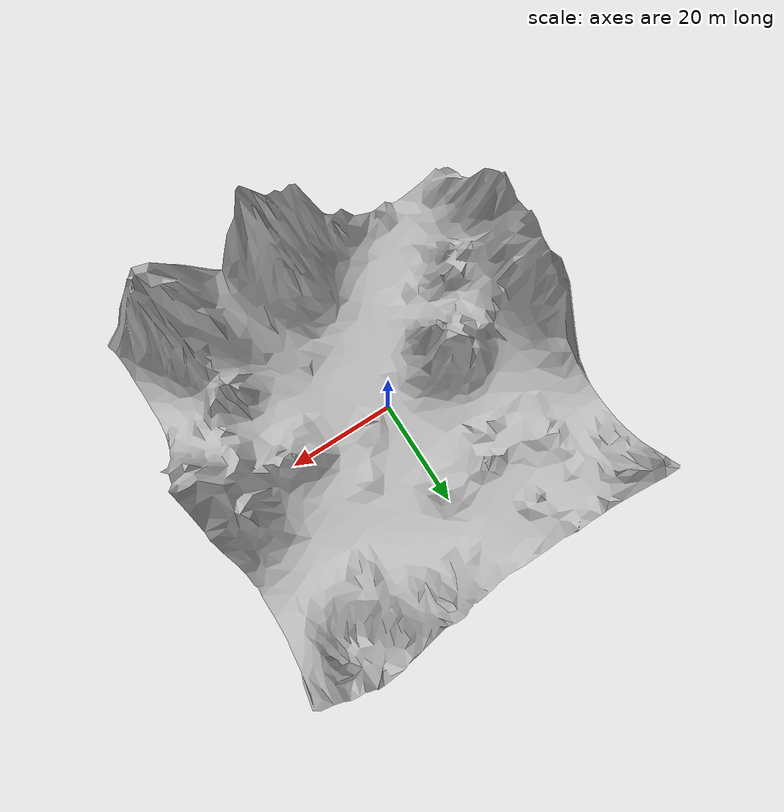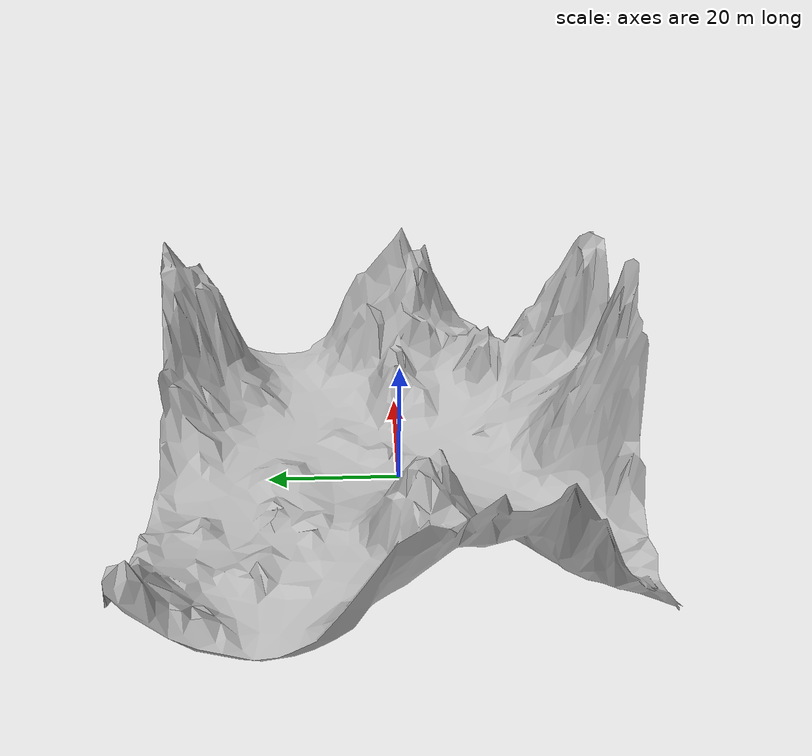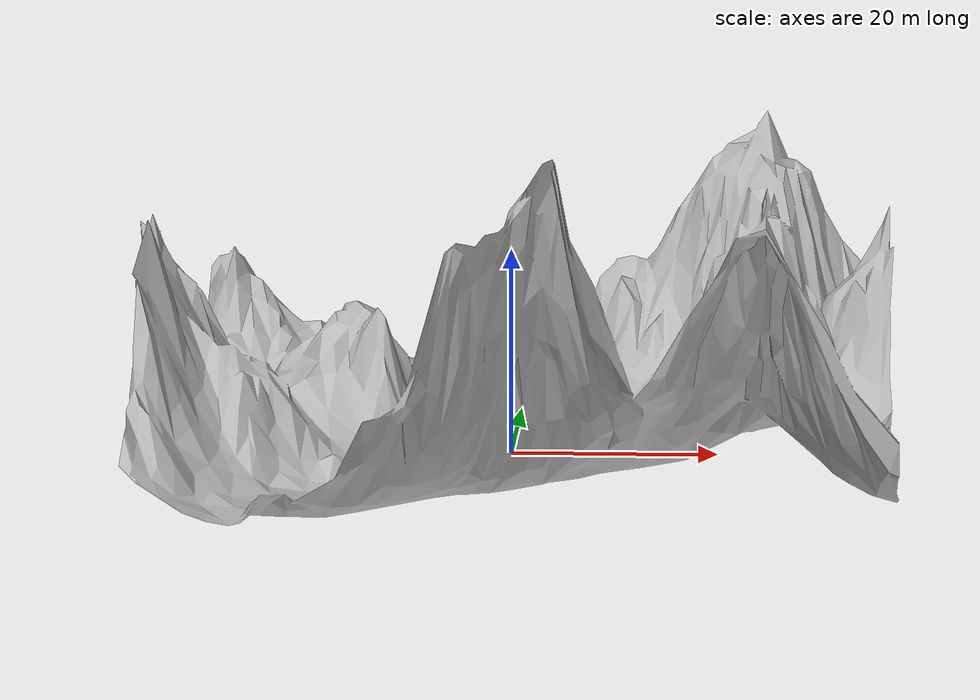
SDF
<sdf version="1.7">
<model name="mountain_forest">
    <static>true</static>
    <link name="mountain_forest">
        <pose>0 0 0 0 0 0</pose>
        <collision name="mountain_forest_collision">
            <geometry>
                <mesh>
                    <uri>model://mountain_forest/meshes/mountain_forest.dae</uri>
                </mesh>
            </geometry>
        </collision>
        <visual name="mountain_forest_visual">
            <geometry>
                <mesh>
                    <uri>model://mountain_forest/meshes/mountain_forest.dae</uri>
                </mesh>
            </geometry>
        </visual>
    </link>
</model>
</sdf>
